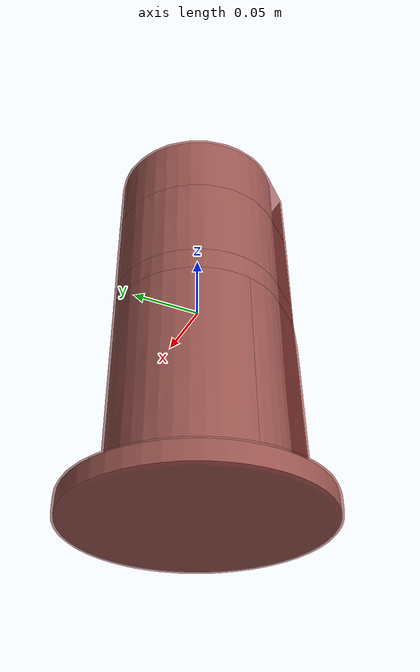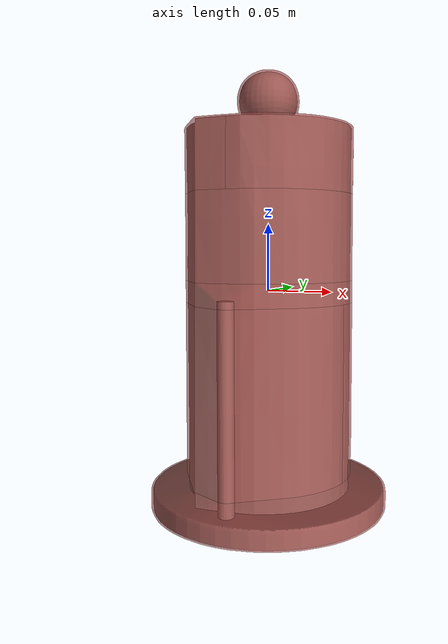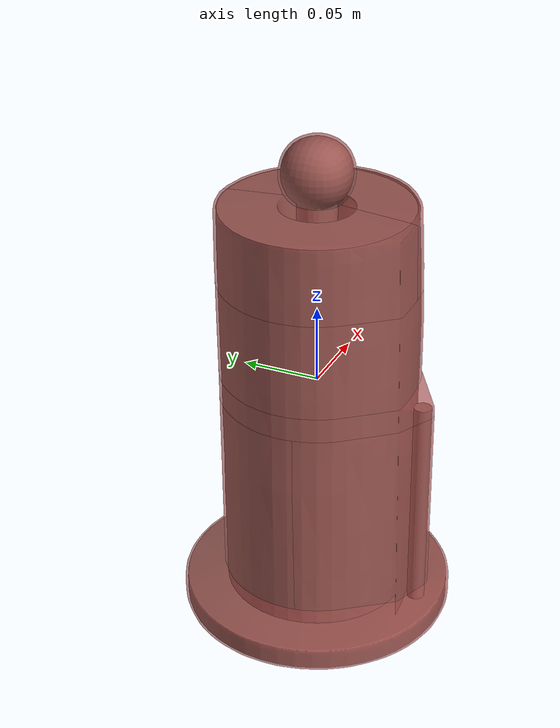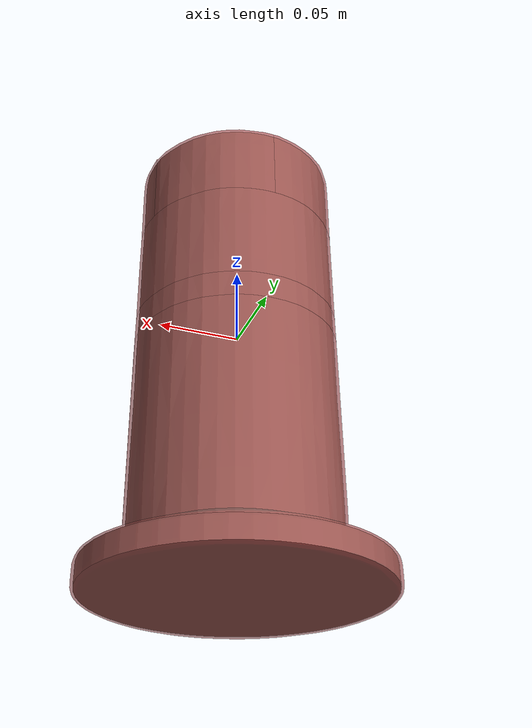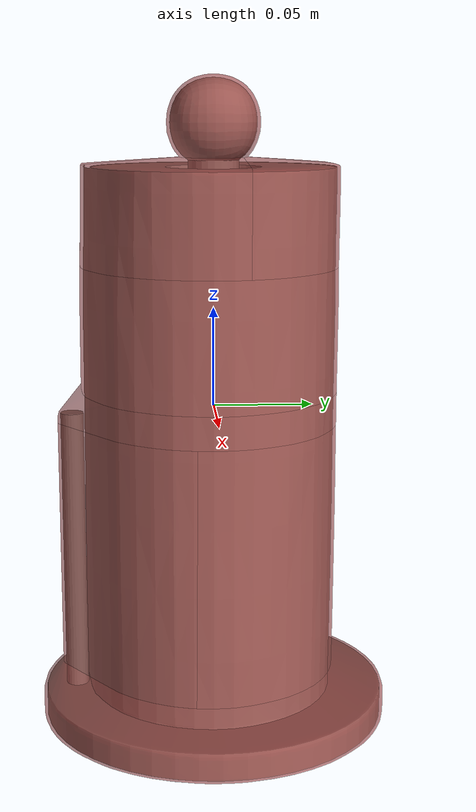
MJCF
<mujoco model="model">
  <option timestep="0.002" gravity="0.0 0.0 -9.81"/>
  <compiler angle="radian"/>
  <asset>
    <mesh file="visual/PaperTowelHolder012.obj" name="PaperTowelHolder012_vis"/>
    <mesh file="visual/Prop.obj" name="PaperTowelHolder012_Prop_vis"/>
    <texture file="visual/T_BC001.png" name="PaperTowelHolder012_material" type="2d"/>
    <material name="PaperTowelHolder012_material" rgba="1 1 1 1.0" texture="PaperTowelHolder012_material" shininess="0.14" specular="3"/>
    <texture file="visual/T_BC001.png" name="PaperTowelHolder012_Prop_material" type="2d"/>
    <material name="PaperTowelHolder012_Prop_material" rgba="1 1 1 1.0" texture="PaperTowelHolder012_Prop_material" shininess="0.30996525287628174" specular="0.0"/>
    <mesh file="collision/collision_mesh_collision_0.obj" name="PaperTowelHolder012_collision_mesh_0"/>
    <mesh file="collision/collision_mesh_collision_1.obj" name="PaperTowelHolder012_collision_mesh_1"/>
    <mesh file="collision/collision_mesh_collision_2.obj" name="PaperTowelHolder012_collision_mesh_2"/>
    <mesh file="collision/collision_mesh_collision_3.obj" name="PaperTowelHolder012_collision_mesh_3"/>
    <mesh file="collision/collision_mesh_collision_4.obj" name="PaperTowelHolder012_collision_mesh_4"/>
    <mesh file="collision/collision_mesh_collision_5.obj" name="PaperTowelHolder012_collision_mesh_5"/>
    <mesh file="collision/collision_mesh_collision_6.obj" name="PaperTowelHolder012_collision_mesh_6"/>
    <mesh file="collision/collision_mesh_collision_7.obj" name="PaperTowelHolder012_collision_mesh_7"/>
    <mesh file="collision/collision_mesh_collision_8.obj" name="PaperTowelHolder012_collision_mesh_8"/>
  </asset>
  <default>
    <default class="visual">
      <geom conaffinity="0" contype="0" group="1" type="mesh"/>
    </default>
    <default class="collision">
      <geom group="0" rgba="0.5 0 0 0.5" density="1000.0"/>
    </default>
    <default class="spawn">
      <geom group="0" rgba="1 1 1 0.5" contype="0" conaffinity="0"/>
      <site group="0" rgba="1 1 1 0.5"/>
    </default>
    <default class="region">
      <geom group="1" conaffinity="0" contype="0" rgba="0 1 0 0" mass="0"/>
    </default>
  </default>
  <worldbody>
    <body>
      <body name="object">
        <geom mesh="PaperTowelHolder012_vis" type="mesh" solimp="0.998 0.998 0.001" solref="0.001 1" friction="0.95 0.3 0.1" class="visual" material="PaperTowelHolder012_material"/>
        <body name="PaperTowelHolder012_Prop">
          <geom mesh="PaperTowelHolder012_Prop_vis" type="mesh" solimp="0.998 0.998 0.001" solref="0.001 1" friction="0.95 0.3 0.1" class="visual" material="PaperTowelHolder012_Prop_material"/>
        </body>
        <geom class="region" name="reg_bbox" type="box" pos="0.0 0.0 -0.00013520999999999672" size="0.08923175 0.08923176 0.16340251"/>
        <geom mesh="PaperTowelHolder012_collision_mesh_0" type="mesh" class="collision"/>
        <geom mesh="PaperTowelHolder012_collision_mesh_1" type="mesh" class="collision"/>
        <geom mesh="PaperTowelHolder012_collision_mesh_2" type="mesh" class="collision"/>
        <geom mesh="PaperTowelHolder012_collision_mesh_3" type="mesh" class="collision"/>
        <geom mesh="PaperTowelHolder012_collision_mesh_4" type="mesh" class="collision"/>
        <geom mesh="PaperTowelHolder012_collision_mesh_5" type="mesh" class="collision"/>
        <geom mesh="PaperTowelHolder012_collision_mesh_6" type="mesh" class="collision"/>
        <geom mesh="PaperTowelHolder012_collision_mesh_7" type="mesh" class="collision"/>
        <geom mesh="PaperTowelHolder012_collision_mesh_8" type="mesh" class="collision"/>
      </body>
    </body>
  </worldbody>
  <actuator/>
</mujoco>
